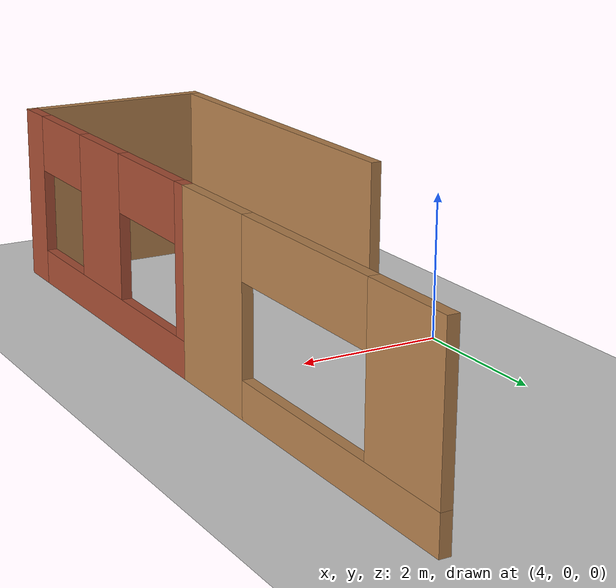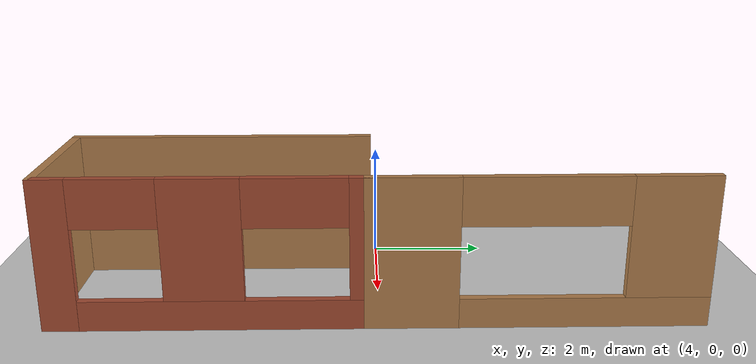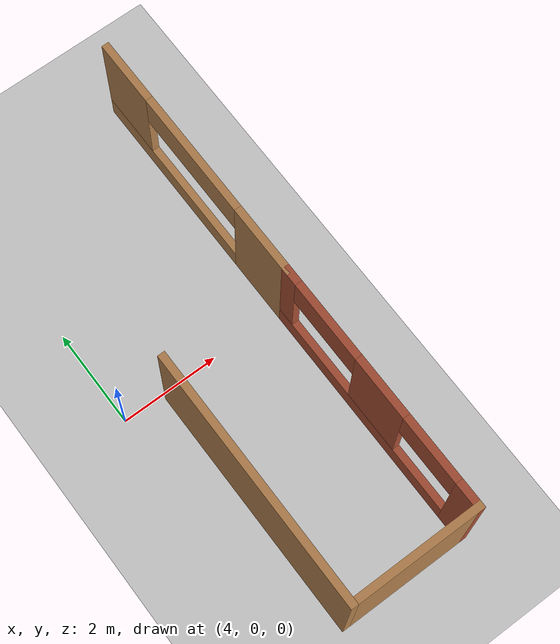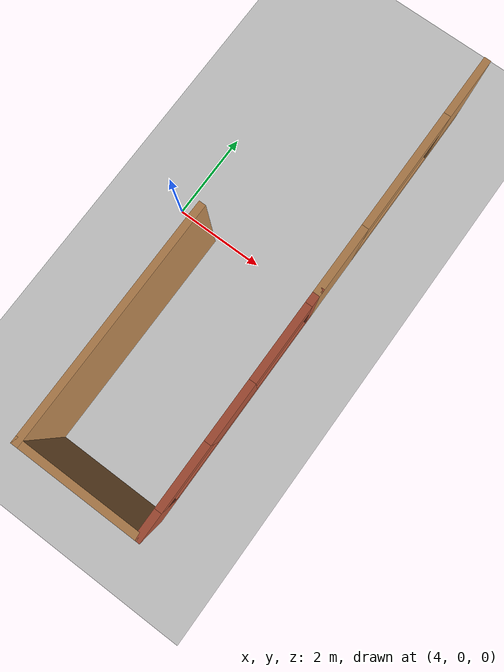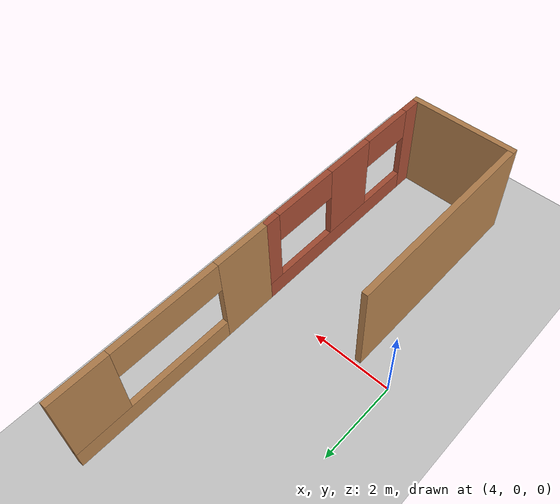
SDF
<sdf version="1.7">
 <world name="simple_house">
  <model name="ground_plane">
   <static>1</static>
   <link name="link">
    <collision name="collision">
     <geometry><plane><normal>0 0 1</normal><size>100 100</size></plane></geometry>
     <surface><friction><ode><mu>100</mu><mu2>50</mu2></ode></friction></surface>
    </collision>
    <visual name="visual">
     <cast_shadows>0</cast_shadows>
     <geometry><plane><normal>0 0 1</normal><size>100 100</size></plane></geometry>
     <material>
      <script><uri>file://media/materials/scripts/gazebo.material</uri><name>Gazebo/Grey</name></script>
     </material>
    </visual>
   </link>
  </model>
  <model name="Wall_93">
   <static>1</static>
   <link name="Wall_93_link">
    <pose>4.9 -2.725 0 0 0 -1.5708</pose>
    <visual name="Wall_93_Visual">
     <pose>0 0 1.25 0 -0 0</pose>
     <geometry><box><size>5.25 0.15 2.5</size></box></geometry>
     <material>
      <script><uri>file://media/materials/scripts/gazebo.material</uri><name>Gazebo/Wood</name></script>
      <ambient>1 1 1 1</ambient>
      <diffuse>1 1 1 1</diffuse>
      <specular>0.2 0.2 0.2 1</specular>
      <emissive>0 0 0 1</emissive>
     </material>
    </visual>
    <collision name="Wall_93_Collision">
     <pose>0 0 1.25 0 -0 0</pose>
     <geometry><box><size>5.25 0.15 2.5</size></box></geometry>
     <surface>
      <friction>
       <ode><mu>1</mu><mu2>1</mu2><fdir1>0 0 0</fdir1><slip1>0</slip1><slip2>0</slip2></ode>
       <torsional>
        <coefficient>1</coefficient>
        <patch_radius>0</patch_radius>
        <surface_radius>0</surface_radius>
        <use_patch_radius>1</use_patch_radius>
        <ode><slip>0</slip></ode>
       </torsional>
      </friction>
      <bounce><restitution_coefficient>0</restitution_coefficient><threshold>1e+06</threshold></bounce>
      <contact>
       <collide_without_contact>0</collide_without_contact>
       <collide_without_contact_bitmask>1</collide_without_contact_bitmask>
       <collide_bitmask>1</collide_bitmask>
       <ode>
        <soft_cfm>0</soft_cfm>
        <soft_erp>0.2</soft_erp>
        <kp>1e+13</kp>
        <kd>1</kd>
        <max_vel>0.01</max_vel>
        <min_depth>0</min_depth>
       </ode>
       <bullet>
        <split_impulse>1</split_impulse>
        <split_impulse_penetration_threshold>-0.01</split_impulse_penetration_threshold>
        <soft_cfm>0</soft_cfm>
        <soft_erp>0.2</soft_erp>
        <kp>1e+13</kp>
        <kd>1</kd>
       </bullet>
      </contact>
     </surface>
    </collision>
   </link>
  </model>
  <model name="Wall_94">
   <static>1</static>
   <link name="Wall_94_link">
    <pose>6.2 -5.275 0 0 -0 0</pose>
    <visual name="Wall_94_Visual">
     <pose>0 0 1.25 0 -0 0</pose>
     <geometry><box><size>2.75 0.15 2.5</size></box></geometry>
     <material>
      <script><uri>file://media/materials/scripts/gazebo.material</uri><name>Gazebo/Wood</name></script>
      <ambient>1 1 1 1</ambient>
      <diffuse>1 1 1 1</diffuse>
      <specular>0.2 0.2 0.2 1</specular>
      <emissive>0 0 0 1</emissive>
     </material>
    </visual>
    <collision name="Wall_94_Collision">
     <pose>0 0 1.25 0 -0 0</pose>
     <geometry><box><size>2.75 0.15 2.5</size></box></geometry>
     <surface>
      <friction>
       <ode><mu>1</mu><mu2>1</mu2><fdir1>0 0 0</fdir1><slip1>0</slip1><slip2>0</slip2></ode>
       <torsional>
        <coefficient>1</coefficient>
        <patch_radius>0</patch_radius>
        <surface_radius>0</surface_radius>
        <use_patch_radius>1</use_patch_radius>
        <ode><slip>0</slip></ode>
       </torsional>
      </friction>
      <bounce><restitution_coefficient>0</restitution_coefficient><threshold>1e+06</threshold></bounce>
      <contact>
       <collide_without_contact>0</collide_without_contact>
       <collide_without_contact_bitmask>1</collide_without_contact_bitmask>
       <collide_bitmask>1</collide_bitmask>
       <ode>
        <soft_cfm>0</soft_cfm>
        <soft_erp>0.2</soft_erp>
        <kp>1e+13</kp>
        <kd>1</kd>
        <max_vel>0.01</max_vel>
        <min_depth>0</min_depth>
       </ode>
       <bullet>
        <split_impulse>1</split_impulse>
        <split_impulse_penetration_threshold>-0.01</split_impulse_penetration_threshold>
        <soft_cfm>0</soft_cfm>
        <soft_erp>0.2</soft_erp>
        <kp>1e+13</kp>
        <kd>1</kd>
       </bullet>
      </contact>
     </surface>
    </collision>
   </link>
  </model>
  <model name="Wall_95">
   <static>1</static>
   <link name="Wall_95_link">
    <pose>7.5 -2.725 0 0 -0 1.5708</pose>
    <visual name="Wall_95_Visual_1">
     <pose>0.295715 0 0.25 0 -0 0</pose>
     <geometry><box><size>4.65857 0.15 0.5</size></box></geometry>
     <material>
      <script><uri>file://media/materials/scripts/gazebo.material</uri><name>Gazebo/Bricks</name></script>
      <ambient>1 1 1 1</ambient>
      <diffuse>1 1 1 1</diffuse>
      <specular>0.2 0.2 0.2 1</specular>
      <emissive>0 0 0 1</emissive>
     </material>
    </visual>
    <visual name="Wall_95_Visual_2">
     <pose>-0.036959 0 1.5 0 -0 0</pose>
     <geometry><box><size>1.27522 0.15 2</size></box></geometry>
     <material>
      <script><uri>file://media/materials/scripts/gazebo.material</uri><name>Gazebo/Bricks</name></script>
      <ambient>1 1 1 1</ambient>
      <diffuse>1 1 1 1</diffuse>
      <specular>0.2 0.2 0.2 1</specular>
      <emissive>0 0 0 1</emissive>
     </material>
    </visual>
    <visual name="Wall_95_Visual_3">
     <pose>2.43783 0 1.5 0 -0 0</pose>
     <geometry><box><size>0.374348 0.15 2</size></box></geometry>
     <material>
      <script><uri>file://media/materials/scripts/gazebo.material</uri><name>Gazebo/Bricks</name></script>
      <ambient>1 1 1 1</ambient>
      <diffuse>1 1 1 1</diffuse>
      <specular>0.2 0.2 0.2 1</specular>
      <emissive>0 0 0 1</emissive>
     </material>
    </visual>
    <visual name="Wall_95_Visual_5">
     <pose>1.42565 0 2.1 0 -0 0</pose>
     <geometry><box><size>1.65 0.15 0.8</size></box></geometry>
     <material>
      <script><uri>file://media/materials/scripts/gazebo.material</uri><name>Gazebo/Bricks</name></script>
      <ambient>1 1 1 1</ambient>
      <diffuse>1 1 1 1</diffuse>
      <specular>0.2 0.2 0.2 1</specular>
      <emissive>0 0 0 1</emissive>
     </material>
    </visual>
    <visual name="Wall_95_Visual_4">
     <pose>-1.35407 0 2.1 0 -0 0</pose>
     <geometry><box><size>1.359 0.15 0.8</size></box></geometry>
     <material>
      <script><uri>file://media/materials/scripts/gazebo.material</uri><name>Gazebo/Bricks</name></script>
      <ambient>1 1 1 1</ambient>
      <diffuse>1 1 1 1</diffuse>
      <specular>0.2 0.2 0.2 1</specular>
      <emissive>0 0 0 1</emissive>
     </material>
    </visual>
    <visual name="Wall_95_Visual_0">
     <pose>-2.32929 0 1.25 0 -0 0</pose>
     <geometry><box><size>0.591431 0.15 2.5</size></box></geometry>
     <material>
      <script><uri>file://media/materials/scripts/gazebo.material</uri><name>Gazebo/Bricks</name></script>
      <ambient>1 1 1 1</ambient>
      <diffuse>1 1 1 1</diffuse>
      <specular>0.2 0.2 0.2 1</specular>
      <emissive>0 0 0 1</emissive>
     </material>
    </visual>
    <collision name="Wall_95_Collision_2">
     <pose>-0.036959 0 1.5 0 -0 0</pose>
     <geometry><box><size>1.27522 0.15 2</size></box></geometry>
     <surface>
      <friction>
       <ode><mu>1</mu><mu2>1</mu2><fdir1>0 0 0</fdir1><slip1>0</slip1><slip2>0</slip2></ode>
       <torsional>
        <coefficient>1</coefficient>
        <patch_radius>0</patch_radius>
        <surface_radius>0</surface_radius>
        <use_patch_radius>1</use_patch_radius>
        <ode><slip>0</slip></ode>
       </torsional>
      </friction>
      <bounce><restitution_coefficient>0</restitution_coefficient><threshold>1e+06</threshold></bounce>
      <contact>
       <collide_without_contact>0</collide_without_contact>
       <collide_without_contact_bitmask>1</collide_without_contact_bitmask>
       <collide_bitmask>1</collide_bitmask>
       <ode>
        <soft_cfm>0</soft_cfm>
        <soft_erp>0.2</soft_erp>
        <kp>1e+13</kp>
        <kd>1</kd>
        <max_vel>0.01</max_vel>
        <min_depth>0</min_depth>
       </ode>
       <bullet>
        <split_impulse>1</split_impulse>
        <split_impulse_penetration_threshold>-0.01</split_impulse_penetration_threshold>
        <soft_cfm>0</soft_cfm>
        <soft_erp>0.2</soft_erp>
        <kp>1e+13</kp>
        <kd>1</kd>
       </bullet>
      </contact>
     </surface>
    </collision>
    <collision name="Wall_95_Collision_3">
     <pose>2.43783 0 1.5 0 -0 0</pose>
     <geometry><box><size>0.374348 0.15 2</size></box></geometry>
     <surface>
      <friction>
       <ode><mu>1</mu><mu2>1</mu2><fdir1>0 0 0</fdir1><slip1>0</slip1><slip2>0</slip2></ode>
       <torsional>
        <coefficient>1</coefficient>
        <patch_radius>0</patch_radius>
        <surface_radius>0</surface_radius>
        <use_patch_radius>1</use_patch_radius>
        <ode><slip>0</slip></ode>
       </torsional>
      </friction>
      <bounce><restitution_coefficient>0</restitution_coefficient><threshold>1e+06</threshold></bounce>
      <contact>
       <collide_without_contact>0</collide_without_contact>
       <collide_without_contact_bitmask>1</collide_without_contact_bitmask>
       <collide_bitmask>1</collide_bitmask>
       <ode>
        <soft_cfm>0</soft_cfm>
        <soft_erp>0.2</soft_erp>
        <kp>1e+13</kp>
        <kd>1</kd>
        <max_vel>0.01</max_vel>
        <min_depth>0</min_depth>
       </ode>
       <bullet>
        <split_impulse>1</split_impulse>
        <split_impulse_penetration_threshold>-0.01</split_impulse_penetration_threshold>
        <soft_cfm>0</soft_cfm>
        <soft_erp>0.2</soft_erp>
        <kp>1e+13</kp>
        <kd>1</kd>
       </bullet>
      </contact>
     </surface>
    </collision>
    <collision name="Wall_95_Collision_5">
     <pose>1.42565 0 2.1 0 -0 0</pose>
     <geometry><box><size>1.65 0.15 0.8</size></box></geometry>
     <surface>
      <friction>
       <ode><mu>1</mu><mu2>1</mu2><fdir1>0 0 0</fdir1><slip1>0</slip1><slip2>0</slip2></ode>
       <torsional>
        <coefficient>1</coefficient>
        <patch_radius>0</patch_radius>
        <surface_radius>0</surface_radius>
        <use_patch_radius>1</use_patch_radius>
        <ode><slip>0</slip></ode>
       </torsional>
      </friction>
      <bounce><restitution_coefficient>0</restitution_coefficient><threshold>1e+06</threshold></bounce>
      <contact>
       <collide_without_contact>0</collide_without_contact>
       <collide_without_contact_bitmask>1</collide_without_contact_bitmask>
       <collide_bitmask>1</collide_bitmask>
       <ode>
        <soft_cfm>0</soft_cfm>
        <soft_erp>0.2</soft_erp>
        <kp>1e+13</kp>
        <kd>1</kd>
        <max_vel>0.01</max_vel>
        <min_depth>0</min_depth>
       </ode>
       <bullet>
        <split_impulse>1</split_impulse>
        <split_impulse_penetration_threshold>-0.01</split_impulse_penetration_threshold>
        <soft_cfm>0</soft_cfm>
        <soft_erp>0.2</soft_erp>
        <kp>1e+13</kp>
        <kd>1</kd>
       </bullet>
      </contact>
     </surface>
    </collision>
    <collision name="Wall_95_Collision_0">
     <pose>-2.32929 0 1.25 0 -0 0</pose>
     <geometry><box><size>0.591431 0.15 2.5</size></box></geometry>
     <surface>
      <friction>
       <ode><mu>1</mu><mu2>1</mu2><fdir1>0 0 0</fdir1><slip1>0</slip1><slip2>0</slip2></ode>
       <torsional>
        <coefficient>1</coefficient>
        <patch_radius>0</patch_radius>
        <surface_radius>0</surface_radius>
        <use_patch_radius>1</use_patch_radius>
        <ode><slip>0</slip></ode>
       </torsional>
      </friction>
      <bounce><restitution_coefficient>0</restitution_coefficient><threshold>1e+06</threshold></bounce>
      <contact>
       <collide_without_contact>0</collide_without_contact>
       <collide_without_contact_bitmask>1</collide_without_contact_bitmask>
       <collide_bitmask>1</collide_bitmask>
       <ode>
        <soft_cfm>0</soft_cfm>
        <soft_erp>0.2</soft_erp>
        <kp>1e+13</kp>
        <kd>1</kd>
        <max_vel>0.01</max_vel>
        <min_depth>0</min_depth>
       </ode>
       <bullet>
        <split_impulse>1</split_impulse>
        <split_impulse_penetration_threshold>-0.01</split_impulse_penetration_threshold>
        <soft_cfm>0</soft_cfm>
        <soft_erp>0.2</soft_erp>
        <kp>1e+13</kp>
        <kd>1</kd>
       </bullet>
      </contact>
     </surface>
    </collision>
    <collision name="Wall_95_Collision_1">
     <pose>0.295715 0 0.25 0 -0 0</pose>
     <geometry><box><size>4.65857 0.15 0.5</size></box></geometry>
     <surface>
      <friction>
       <ode><mu>1</mu><mu2>1</mu2><fdir1>0 0 0</fdir1><slip1>0</slip1><slip2>0</slip2></ode>
       <torsional>
        <coefficient>1</coefficient>
        <patch_radius>0</patch_radius>
        <surface_radius>0</surface_radius>
        <use_patch_radius>1</use_patch_radius>
        <ode><slip>0</slip></ode>
       </torsional>
      </friction>
      <bounce><restitution_coefficient>0</restitution_coefficient><threshold>1e+06</threshold></bounce>
      <contact>
       <collide_without_contact>0</collide_without_contact>
       <collide_without_contact_bitmask>1</collide_without_contact_bitmask>
       <collide_bitmask>1</collide_bitmask>
       <ode>
        <soft_cfm>0</soft_cfm>
        <soft_erp>0.2</soft_erp>
        <kp>1e+13</kp>
        <kd>1</kd>
        <max_vel>0.01</max_vel>
        <min_depth>0</min_depth>
       </ode>
       <bullet>
        <split_impulse>1</split_impulse>
        <split_impulse_penetration_threshold>-0.01</split_impulse_penetration_threshold>
        <soft_cfm>0</soft_cfm>
        <soft_erp>0.2</soft_erp>
        <kp>1e+13</kp>
        <kd>1</kd>
       </bullet>
      </contact>
     </surface>
    </collision>
    <collision name="Wall_95_Collision_4">
     <pose>-1.35407 0 2.1 0 -0 0</pose>
     <geometry><box><size>1.359 0.15 0.8</size></box></geometry>
     <surface>
      <friction>
       <ode><mu>1</mu><mu2>1</mu2><fdir1>0 0 0</fdir1><slip1>0</slip1><slip2>0</slip2></ode>
       <torsional>
        <coefficient>1</coefficient>
        <patch_radius>0</patch_radius>
        <surface_radius>0</surface_radius>
        <use_patch_radius>1</use_patch_radius>
        <ode><slip>0</slip></ode>
       </torsional>
      </friction>
      <bounce><restitution_coefficient>0</restitution_coefficient><threshold>1e+06</threshold></bounce>
      <contact>
       <collide_without_contact>0</collide_without_contact>
       <collide_without_contact_bitmask>1</collide_without_contact_bitmask>
       <collide_bitmask>1</collide_bitmask>
       <ode>
        <soft_cfm>0</soft_cfm>
        <soft_erp>0.2</soft_erp>
        <kp>1e+13</kp>
        <kd>1</kd>
        <max_vel>0.01</max_vel>
        <min_depth>0</min_depth>
       </ode>
       <bullet>
        <split_impulse>1</split_impulse>
        <split_impulse_penetration_threshold>-0.01</split_impulse_penetration_threshold>
        <soft_cfm>0</soft_cfm>
        <soft_erp>0.2</soft_erp>
        <kp>1e+13</kp>
        <kd>1</kd>
       </bullet>
      </contact>
     </surface>
    </collision>
   </link>
  </model>
  <model name="Wall_96">
   <static>1</static>
   <link name="Wall_96_link">
    <pose>7.5 2.5 0 0 -0 1.5708</pose>
    <visual name="Wall_96_Visual_1">
     <pose>0.75174 0 0.25 0 -0 0</pose>
     <geometry><box><size>3.99652 0.15 0.5</size></box></geometry>
     <material>
      <script><uri>file://media/materials/scripts/gazebo.material</uri><name>Gazebo/Wood</name></script>
      <ambient>1 1 1 1</ambient>
      <diffuse>1 1 1 1</diffuse>
      <specular>0.2 0.2 0.2 1</specular>
      <emissive>0 0 0 1</emissive>
     </material>
    </visual>
    <visual name="Wall_96_Visual_2">
     <pose>2.06924 0 1.5 0 -0 0</pose>
     <geometry><box><size>1.36152 0.15 2</size></box></geometry>
     <material>
      <script><uri>file://media/materials/scripts/gazebo.material</uri><name>Gazebo/Wood</name></script>
      <ambient>1 1 1 1</ambient>
      <diffuse>1 1 1 1</diffuse>
      <specular>0.2 0.2 0.2 1</specular>
      <emissive>0 0 0 1</emissive>
     </material>
    </visual>
    <visual name="Wall_96_Visual_3">
     <pose>0.070981 0 2.1 0 -0 0</pose>
     <geometry><box><size>2.635 0.15 0.8</size></box></geometry>
     <material>
      <script><uri>file://media/materials/scripts/gazebo.material</uri><name>Gazebo/Wood</name></script>
      <ambient>1 1 1 1</ambient>
      <diffuse>1 1 1 1</diffuse>
      <specular>0.2 0.2 0.2 1</specular>
      <emissive>0 0 0 1</emissive>
     </material>
    </visual>
    <visual name="Wall_96_Visual_0">
     <pose>-1.99826 0 1.25 0 -0 0</pose>
     <geometry><box><size>1.50348 0.15 2.5</size></box></geometry>
     <material>
      <script><uri>file://media/materials/scripts/gazebo.material</uri><name>Gazebo/Wood</name></script>
      <ambient>1 1 1 1</ambient>
      <diffuse>1 1 1 1</diffuse>
      <specular>0.2 0.2 0.2 1</specular>
      <emissive>0 0 0 1</emissive>
     </material>
    </visual>
    <collision name="Wall_96_Collision_2">
     <pose>2.06924 0 1.5 0 -0 0</pose>
     <geometry><box><size>1.36152 0.15 2</size></box></geometry>
     <surface>
      <friction>
       <ode><mu>1</mu><mu2>1</mu2><fdir1>0 0 0</fdir1><slip1>0</slip1><slip2>0</slip2></ode>
       <torsional>
        <coefficient>1</coefficient>
        <patch_radius>0</patch_radius>
        <surface_radius>0</surface_radius>
        <use_patch_radius>1</use_patch_radius>
        <ode><slip>0</slip></ode>
       </torsional>
      </friction>
      <bounce><restitution_coefficient>0</restitution_coefficient><threshold>1e+06</threshold></bounce>
      <contact>
       <collide_without_contact>0</collide_without_contact>
       <collide_without_contact_bitmask>1</collide_without_contact_bitmask>
       <collide_bitmask>1</collide_bitmask>
       <ode>
        <soft_cfm>0</soft_cfm>
        <soft_erp>0.2</soft_erp>
        <kp>1e+13</kp>
        <kd>1</kd>
        <max_vel>0.01</max_vel>
        <min_depth>0</min_depth>
       </ode>
       <bullet>
        <split_impulse>1</split_impulse>
        <split_impulse_penetration_threshold>-0.01</split_impulse_penetration_threshold>
        <soft_cfm>0</soft_cfm>
        <soft_erp>0.2</soft_erp>
        <kp>1e+13</kp>
        <kd>1</kd>
       </bullet>
      </contact>
     </surface>
    </collision>
    <collision name="Wall_96_Collision_0">
     <pose>-1.99826 0 1.25 0 -0 0</pose>
     <geometry><box><size>1.50348 0.15 2.5</size></box></geometry>
     <surface>
      <friction>
       <ode><mu>1</mu><mu2>1</mu2><fdir1>0 0 0</fdir1><slip1>0</slip1><slip2>0</slip2></ode>
       <torsional>
        <coefficient>1</coefficient>
        <patch_radius>0</patch_radius>
        <surface_radius>0</surface_radius>
        <use_patch_radius>1</use_patch_radius>
        <ode><slip>0</slip></ode>
       </torsional>
      </friction>
      <bounce><restitution_coefficient>0</restitution_coefficient><threshold>1e+06</threshold></bounce>
      <contact>
       <collide_without_contact>0</collide_without_contact>
       <collide_without_contact_bitmask>1</collide_without_contact_bitmask>
       <collide_bitmask>1</collide_bitmask>
       <ode>
        <soft_cfm>0</soft_cfm>
        <soft_erp>0.2</soft_erp>
        <kp>1e+13</kp>
        <kd>1</kd>
        <max_vel>0.01</max_vel>
        <min_depth>0</min_depth>
       </ode>
       <bullet>
        <split_impulse>1</split_impulse>
        <split_impulse_penetration_threshold>-0.01</split_impulse_penetration_threshold>
        <soft_cfm>0</soft_cfm>
        <soft_erp>0.2</soft_erp>
        <kp>1e+13</kp>
        <kd>1</kd>
       </bullet>
      </contact>
     </surface>
    </collision>
    <collision name="Wall_96_Collision_3">
     <pose>0.070981 0 2.1 0 -0 0</pose>
     <geometry><box><size>2.635 0.15 0.8</size></box></geometry>
     <surface>
      <friction>
       <ode><mu>1</mu><mu2>1</mu2><fdir1>0 0 0</fdir1><slip1>0</slip1><slip2>0</slip2></ode>
       <torsional>
        <coefficient>1</coefficient>
        <patch_radius>0</patch_radius>
        <surface_radius>0</surface_radius>
        <use_patch_radius>1</use_patch_radius>
        <ode><slip>0</slip></ode>
       </torsional>
      </friction>
      <bounce><restitution_coefficient>0</restitution_coefficient><threshold>1e+06</threshold></bounce>
      <contact>
       <collide_without_contact>0</collide_without_contact>
       <collide_without_contact_bitmask>1</collide_without_contact_bitmask>
       <collide_bitmask>1</collide_bitmask>
       <ode>
        <soft_cfm>0</soft_cfm>
        <soft_erp>0.2</soft_erp>
        <kp>1e+13</kp>
        <kd>1</kd>
        <max_vel>0.01</max_vel>
        <min_depth>0</min_depth>
       </ode>
       <bullet>
        <split_impulse>1</split_impulse>
        <split_impulse_penetration_threshold>-0.01</split_impulse_penetration_threshold>
        <soft_cfm>0</soft_cfm>
        <soft_erp>0.2</soft_erp>
        <kp>1e+13</kp>
        <kd>1</kd>
       </bullet>
      </contact>
     </surface>
    </collision>
    <collision name="Wall_96_Collision_1">
     <pose>0.75174 0 0.25 0 -0 0</pose>
     <geometry><box><size>3.99652 0.15 0.5</size></box></geometry>
     <surface>
      <friction>
       <ode><mu>1</mu><mu2>1</mu2><fdir1>0 0 0</fdir1><slip1>0</slip1><slip2>0</slip2></ode>
       <torsional>
        <coefficient>1</coefficient>
        <patch_radius>0</patch_radius>
        <surface_radius>0</surface_radius>
        <use_patch_radius>1</use_patch_radius>
        <ode><slip>0</slip></ode>
       </torsional>
      </friction>
      <bounce><restitution_coefficient>0</restitution_coefficient><threshold>1e+06</threshold></bounce>
      <contact>
       <collide_without_contact>0</collide_without_contact>
       <collide_without_contact_bitmask>1</collide_without_contact_bitmask>
       <collide_bitmask>1</collide_bitmask>
       <ode>
        <soft_cfm>0</soft_cfm>
        <soft_erp>0.2</soft_erp>
        <kp>1e+13</kp>
        <kd>1</kd>
        <max_vel>0.01</max_vel>
        <min_depth>0</min_depth>
       </ode>
       <bullet>
        <split_impulse>1</split_impulse>
        <split_impulse_penetration_threshold>-0.01</split_impulse_penetration_threshold>
        <soft_cfm>0</soft_cfm>
        <soft_erp>0.2</soft_erp>
        <kp>1e+13</kp>
        <kd>1</kd>
       </bullet>
      </contact>
     </surface>
    </collision>
   </link>
  </model>
 </world>
</sdf>
